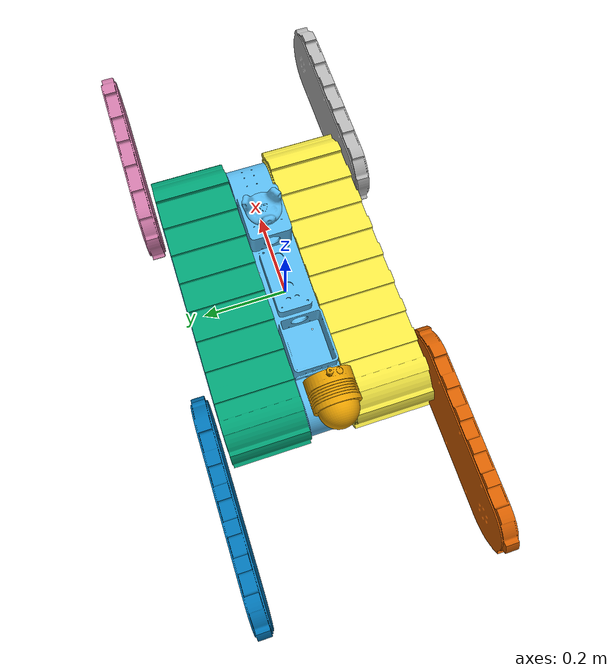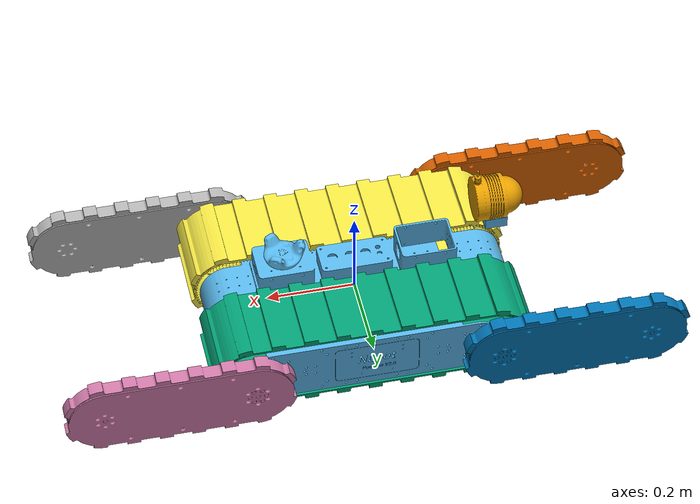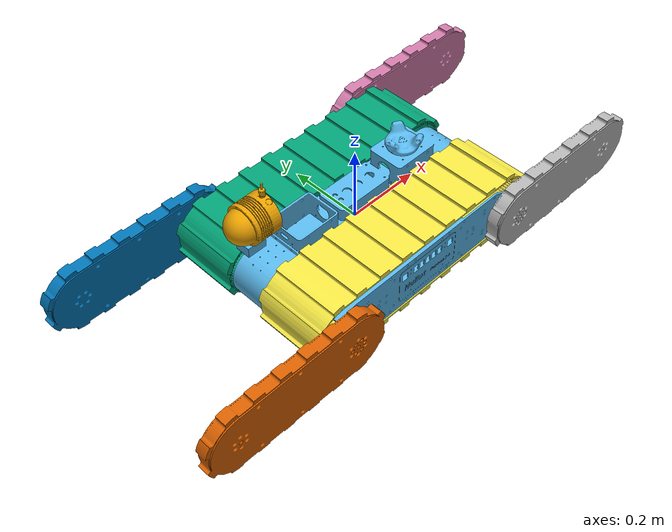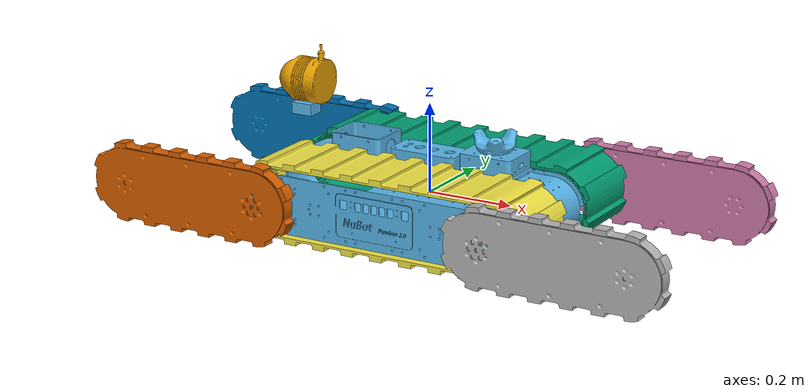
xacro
<?xml version='1.0'?>
<robot name="NuBot_Pumbaa_v2" xmlns:xacro="http://www.ros.org/wiki/xacro">

  <xacro:property name="PI" value="3.1415926535897931"/>

  <xacro:property name="base_mass" value="15" />
  <xacro:property name="track_mass" value="10" />
  <xacro:property name="flipper_mass" value="2.5" />

  <xacro:property name="track_radius" value="0.091" />
  <xacro:property name="track_width" value="0.18" />
  <xacro:property name="track_length" value="0.552" />
  <xacro:property name="track_distance" value="0.145" />

  <xacro:property name="flipper_radius" value="0.09" />
  <xacro:property name="flipper_width" value="0.038" />
  <xacro:property name="flipper_length" value="0.336" />
  <xacro:property name="flipper_distance" value="0.266" />
  <xacro:property name="flipper_visual_bias" value="0.016" />

  <link name="base_link"></link>
  <joint name="base_link_joint" type="fixed">
    <origin xyz="0 0 0" rpy="0 0 0" />
    <parent link="base_link"/>
    <child link="chassis_link" />
  </joint>
  <!--chassis_link-->
  <link name='chassis_link'>
    <inertial>
      <origin xyz="0 0 0" rpy="0 0 0" />
      <mass value="${base_mass}" />
      <inertia ixx="0.203664" ixy="0" ixz="0"
                iyy="0.136197" iyz="0"
                izz="0.319921" />
    </inertial>

    <collision name='base_collision_1'>
      <origin xyz="${track_length/2} 0 0" rpy="${PI/2} 0 0" />
      <geometry>
        <cylinder radius="0.07" length="0.10"/>
      </geometry>
    </collision>
    <collision name='base_collision_2'>
      <origin xyz="${-1*track_length/2} 0 0" rpy="${PI/2} 0 0" />
      <geometry>
        <cylinder radius="0.07" length="0.10"/>
      </geometry>
    </collision>
    <collision name='base_collision'>
      <origin xyz="0 0 0" rpy="0 0 0" />
      <geometry>
        <box size="${track_length} 0.10 0.14" />
      </geometry>
    </collision>
    <visual name='base_visual'>
      <origin xyz="0 0 0" rpy="0 0 0" />
      <geometry>
        <mesh filename="model://NuBot_Pumbaa_v2/meshes/base_link.STL" />
      </geometry>
    </visual>
    <visual name='base_vive_link_visual'>
      <origin xyz="0.16175 0 0.138" rpy="0 0 0" />
      <geometry>
        <mesh filename="model://NuBot_Pumbaa_v2/meshes/vive_link.STL" />
      </geometry>
    </visual>
  </link>

  <gazebo reference="chassis_link">
    <selfCollide>false</selfCollide>
    <mu1>1</mu1>
    <mu2>1</mu2>
    <kp value="10000000.0" />
    <kd value="1.0" />
    <fdir1 value="0 1 0" />
    <gravity>1</gravity>
    <maxContacts>2</maxContacts>
  </gazebo>

  <!--left_track-->
  <link name='left_track_link'>
    <inertial>
      <origin xyz="0 0 0" rpy="0 0 0" />
      <mass value="${track_mass}" />
      <inertia ixx="0.15" ixy="0" ixz="0"
                iyy="0.9" iyz="0"
                izz="0.9" />
    </inertial>

    <visual name='left_track_visual'>
      <origin xyz="0 ${-1*track_distance} 0" rpy="0 0 0" />
      <geometry>
        <mesh filename="model://NuBot_Pumbaa_v2/meshes/left_track_link.STL" />
      </geometry>
    </visual>

    <collision name='left_track_collision_1'>
      <origin xyz="${track_length/2} 0 0" rpy="${PI/2} 0 0" />
      <geometry>
        <cylinder radius="${track_radius}" length="${track_width}"/>
      </geometry>
    </collision>
    <collision name='left_track_collision_2'>
      <origin xyz="${-1*track_length/2} 0 0" rpy="${PI/2} 0 0" />
      <geometry>
        <cylinder radius="${track_radius}" length="${track_width}"/>
      </geometry>
    </collision>
    <collision name='left_track_collision'>
      <origin xyz="0 0 0" rpy="0 0 0" />
      <geometry>
        <box size="${track_length} ${track_width} ${track_radius*2}" />
      </geometry>
    </collision>
  </link>

  <gazebo reference="left_track_link">
    <selfCollide>false</selfCollide>
    <mu1>10</mu1>
    <mu2>10</mu2>
    <kp value="10000000.0" />
    <kd value="1.0" />
    <fdir1 value="0 1 0" />
    <gravity>1</gravity>
    <maxContacts>2</maxContacts>
  </gazebo>

  <!--left_track joints-->
  <joint name='left_track_joint' type='revolute'><!-- fixed -->
    <origin xyz="0 ${track_distance} 0" rpy="0 0 0" />
    <child link="left_track_link" />
    <parent link="chassis_link" />
    <limit lower="-1e-16" upper="1e-16" effort="10000" velocity="10000"/>
    <axis xyz="0 0 0"/>
    <dynamics damping="10000" friction="10000"/>
  </joint>

  <!--right_track-->
  <link name='right_track_link'>
    <inertial>
      <origin xyz="0 0 0" rpy="0 0 0" />
      <mass value="${track_mass}" />
      <inertia ixx="0.15" ixy="0" ixz="0"
                iyy="0.9" iyz="0"
                izz="0.9" />
    </inertial>

    <visual name='right_track_visual'>
      <origin xyz="0 ${track_distance} 0" rpy="0 0 0" />
      <geometry>
        <mesh filename="model://NuBot_Pumbaa_v2/meshes/right_track_link.STL" />
      </geometry>
    </visual>

    <collision name='right_track_collision_1'>
      <origin xyz="${track_length/2} 0 0" rpy="${PI/2} 0 0" />
      <geometry>
        <cylinder radius="${track_radius}" length="${track_width}"/>
      </geometry>
    </collision>
    <collision name='right_track_collision_2'>
      <origin xyz="${-1*track_length/2} 0 0" rpy="${PI/2} 0 0" />
      <geometry>
        <cylinder radius="${track_radius}" length="${track_width}"/>
      </geometry>
    </collision>
    <collision name='right_track_collision'>
      <origin xyz="0 0 0" rpy="0 0 0" />
      <geometry>
        <box size="${track_length} ${track_width} ${track_radius*2}" />
      </geometry>
    </collision>
  </link>

  <gazebo reference="right_track_link">
    <selfCollide>false</selfCollide>
    <mu1>10</mu1>
    <mu2>10</mu2>
    <kp value="10000000.0" />
    <kd value="1.0" />
    <fdir1 value="0 1 0" />
    <gravity>1</gravity>
    <maxContacts>2</maxContacts>
  </gazebo>

  <!--right_track joints-->
  <joint name='right_track_joint' type='revolute'><!-- fixed -->
    <origin xyz="0 ${-1*track_distance} 0" rpy="0 0 0" />
    <parent link="chassis_link" />
    <child link="right_track_link" />
    <limit lower="-1e-16" upper="1e-16" effort="10000" velocity="10000"/>
    <axis xyz="0 0 0"/>
    <dynamics damping="10000" friction="10000"/>
  </joint>

  <!--rear_left_flipper-->
  <link name='rear_left_flipper_link'>
    <inertial>
      <origin xyz="${-1*flipper_length/2} 0 0" rpy="0 0 0" />
      <mass value="${flipper_mass}" />
      <inertia ixx="0.0025" ixy="0" ixz="0"
                iyy="0.022" iyz="0"
                izz="0.02" />
    </inertial>

    <visual name='rear_left_flipper_visual'>
      <origin xyz="0 ${-1*flipper_visual_bias} 0" rpy="0 0 0" />
      <geometry>
        <mesh filename="model://NuBot_Pumbaa_v2/meshes/back_left_fin_link.STL" />
      </geometry>
    </visual>

    <collision name='rear_left_flipper_collision_large_wheel_collision'>
      <origin xyz="0 0 0" rpy="${PI/2} 0 0" />
      <geometry>
        <cylinder radius="${flipper_radius}" length="${flipper_width}"/>
      </geometry>
    </collision>
    <collision name='rear_left_flipper_collision_small_wheel_collision'>
      <origin xyz="${-1*flipper_length} 0 0" rpy="${PI/2} 0 0" />
      <geometry>
        <cylinder radius="${flipper_radius}" length="${flipper_width}"/>
      </geometry>
    </collision>
    <collision name='rear_left_flipper_collision_middle_bar_collision'>
      <origin xyz="${-1*flipper_length/2} 0 0" rpy="0 0 0" />
      <geometry>
        <box size="${flipper_length} ${flipper_width} ${flipper_radius*2}" />
      </geometry>
    </collision>
  </link>

  <gazebo reference="rear_left_flipper_link">
    <selfCollide>false</selfCollide>
    <mu1>10</mu1>
    <mu2>10</mu2>
    <kp value="10000000.0" />
    <kd value="1.0" />
    <fdir1 value="0 1 0" />
    <gravity>1</gravity>
    <maxContacts>2</maxContacts>
  </gazebo>

  <joint name='rear_left_flipper_joint' type='revolute'>
    <origin xyz="${-1*track_length/2} ${flipper_distance} 0" rpy="0 0 0" />
    <child link="rear_left_flipper_link" />
    <parent link="chassis_link" />
    <axis xyz="0 1 0" />
    <limit lower="-3" upper="3" effort="-1" velocity="0.3" />
  </joint>

  <!--rear_right_flipper-->
  <link name='rear_right_flipper_link'>
    <inertial>
      <origin xyz="${-1*flipper_length/2} 0 0" rpy="0 0 0" />
      <mass value="${flipper_mass}" />
      <inertia ixx="0.0025" ixy="0" ixz="0"
                iyy="0.022" iyz="0"
                izz="0.02" />
    </inertial>

    <visual name='rear_right_flipper_visual'>
      <origin xyz="0 ${flipper_visual_bias} 0" rpy="0 0 0" />
      <geometry>
        <mesh filename="model://NuBot_Pumbaa_v2/meshes/back_right_fin_link.STL" />
      </geometry>
    </visual>

    <collision name='rear_right_flipper_collision_large_wheel_collision'>
      <origin xyz="0 0 0" rpy="${PI/2} 0 0" />
      <geometry>
        <cylinder radius="${flipper_radius}" length="${flipper_width}"/>
      </geometry>
    </collision>
    <collision name='rear_right_flipper_collision_small_wheel_collision'>
      <origin xyz="${-1*flipper_length} 0 0" rpy="${PI/2} 0 0" />
      <geometry>
        <cylinder radius="${flipper_radius}" length="${flipper_width}"/>
      </geometry>
    </collision>
    <collision name='rear_right_flipper_collision_middle_bar_collision'>
      <origin xyz="${-1*flipper_length/2} 0 0" rpy="0 0 ${PI}" />
      <geometry>
        <box size="${flipper_length} ${flipper_width} ${flipper_radius*2}" />
      </geometry>
    </collision>
  </link>

  <gazebo reference="rear_right_flipper_link">
    <selfCollide>false</selfCollide>
    <mu1>10</mu1>
    <mu2>10</mu2>
    <kp value="10000000.0" />
    <kd value="1.0" />
    <fdir1 value="0 1 0" />
    <gravity>1</gravity>
    <maxContacts>2</maxContacts>
  </gazebo>

  <joint name='rear_right_flipper_joint' type='revolute'>
    <origin xyz="${-1*track_length/2} ${-1*flipper_distance} 0" rpy="0 0 0" />
    <child link="rear_right_flipper_link" />
    <parent link="chassis_link" />
    <axis xyz="0 1 0" />
    <limit lower="-3" upper="3" effort="-1" velocity="0.3" />
  </joint>

  <!--front_left_flipper-->
  <link name='front_left_flipper_link'>
    <inertial>
      <origin xyz="${flipper_length/2} 0 0" rpy="0 0 0" />
      <mass value="${flipper_mass}" />
      <inertia ixx="0.0025" ixy="0" ixz="0"
                iyy="0.022" iyz="0"
                izz="0.02" />
    </inertial>

    <visual name='front_left_flipper_visual'>
      <origin xyz="0 ${-1*flipper_visual_bias} 0" rpy="0 0 0" />
      <geometry>
        <mesh filename="model://NuBot_Pumbaa_v2/meshes/front_left_fin_link.STL" />
      </geometry>
    </visual>

    <collision name='front_left_flipper_collision_large_wheel_collision'>
      <origin xyz="0 0 0" rpy="${PI/2} 0 0" />
      <geometry>
        <cylinder radius="${flipper_radius}" length="${flipper_width}"/>
      </geometry>
    </collision>
    <collision name='front_left_flipper_collision_small_wheel_collision'>
      <origin xyz="${flipper_length} 0 0" rpy="${PI/2} 0 0" />
      <geometry>
        <cylinder radius="${flipper_radius}" length="${flipper_width}"/>
      </geometry>
    </collision>
    <collision name='front_left_flipper_collision_middle_bar_collision'>
      <origin xyz="${flipper_length/2} 0 0" rpy="0 0 0" />
      <geometry>
        <box size="${flipper_length} ${flipper_width} ${flipper_radius*2}" />
      </geometry>
    </collision>
  </link>

  <gazebo reference="front_left_flipper_link">
    <selfCollide>false</selfCollide>
    <mu1>10</mu1>
    <mu2>10</mu2>
    <kp value="10000000.0" />
    <kd value="1.0" />
    <fdir1 value="0 1 0" />
    <gravity>1</gravity>
    <maxContacts>2</maxContacts>
  </gazebo>

  <joint name='front_left_flipper_joint' type='revolute'>
    <origin xyz="${track_length/2} ${flipper_distance} 0" rpy="0 0 0" />
    <child link="front_left_flipper_link" />
    <parent link="chassis_link" />
    <axis xyz="0 1 0" />
    <limit lower="-3" upper="3" effort="-1" velocity="0.3" />
  </joint>

  <!--front_right_flipper-->
  <link name='front_right_flipper_link'>
    <inertial>
      <origin xyz="${flipper_length/2} 0 0" rpy="0 0 0" />
      <mass value="${flipper_mass}" />
      <inertia ixx="0.0025" ixy="0" ixz="0"
                iyy="0.022" iyz="0"
                izz="0.02" />
    </inertial>

    <visual name='front_right_flipper_link_visual'>
      <origin xyz="0 ${flipper_visual_bias} 0" rpy="0 0 0" />
      <geometry>
        <mesh filename="model://NuBot_Pumbaa_v2/meshes/front_right_fin_link.STL" />
      </geometry>
    </visual>

    <collision name='front_right_flipper_collision_large_wheel_collision'>
      <origin xyz="0 0 0" rpy="${PI/2} 0 0" />
      <geometry>
        <cylinder radius="${flipper_radius}" length="${flipper_width}"/>
      </geometry>
    </collision>
    <collision name='front_right_flipper_collision_small_wheel_collision'>
      <origin xyz="${flipper_length} 0 0" rpy="${PI/2} 0 0" />
      <geometry>
        <cylinder radius="${flipper_radius}" length="${flipper_width}"/>
      </geometry>
    </collision>
    <collision name='front_right_flipper_collision_middle_bar_collision'>
      <origin xyz="${flipper_length/2} 0 0" rpy="0 0 ${PI}" />
      <geometry>
        <box size="${flipper_length} ${flipper_width} ${flipper_radius*2}" />
      </geometry>
    </collision>
  </link>

  <gazebo reference="front_right_flipper_link">
    <selfCollide>false</selfCollide>
    <mu1>10</mu1>
    <mu2>10</mu2>
    <kp value="10000000.0" />
    <kd value="1.0" />
    <fdir1 value="0 1 0" />
    <gravity>1</gravity>
    <maxContacts>2</maxContacts>
  </gazebo>

  <joint name='front_right_flipper_joint' type='revolute'>
    <origin xyz="${track_length/2} ${-1*flipper_distance} 0" rpy="0 0 0" />
    <child link="front_right_flipper_link" />
    <parent link="chassis_link" />
    <axis xyz="0 1 0" />
    <limit lower="-3" upper="3" effort="-1" velocity="0.3" />
  </joint>

  <gazebo>
    <plugin name='NuBot_Pumbaa_Gazebo_Plugin' filename='libnubot_pumbaa_plugin.so'>
      <!--The link tags of tracks-->
      <body>base_link</body>
      <left_track>left_track_link</left_track>
      <right_track>right_track_link</right_track>
      <left_flipper>front_left_flipper_link</left_flipper>
      <left_flipper>rear_left_flipper_link</left_flipper>
      <right_flipper>front_right_flipper_link</right_flipper>
      <right_flipper>rear_right_flipper_link</right_flipper>
      <!--The flippers joint tag-->
      <front_left_flipper_j>front_left_flipper_joint</front_left_flipper_j>
      <rear_left_flipper_j>rear_left_flipper_joint</rear_left_flipper_j>
      <front_right_flipper_j>front_right_flipper_joint</front_right_flipper_j>
      <rear_right_flipper_j>rear_right_flipper_joint</rear_right_flipper_j>
      <!--The Mu/Mu2 of tracks, which influnce the simulating performance-->
      <track_mu>2</track_mu>
      <track_mu2>0.8</track_mu2>
      <!--The PID parameter of flippers position controll & initial position 1.5708 -->
      <flip_p>1750</flip_p>
      <flip_i>800</flip_i>
      <flip_d>0</flip_d>
      <flip_initial>0</flip_initial>
      <!--The PID parameter of flippers velocity controll, not working-->
      <flip_vel_p>100</flip_vel_p>
      <flip_vel_i>100</flip_vel_i>
      <flip_vel_d>0</flip_vel_d>
      <!--The parameters of tracks-->
      <tracksSeparation>0.29</tracksSeparation>
      <steeringEfficiency>0.5</steeringEfficiency>
      <maxLinearSpeed>2.0</maxLinearSpeed>
      <maxAngularSpeed>1.5</maxAngularSpeed>
    </plugin>
  </gazebo>

  <!-- RS-Helios lidar includes -->
  <!-- IMU includes (RS-Helios) -->

  <!-- RS-Bpearl lidar includes -->
  <xacro:include filename="$(find gazebo_description)/models/RS_Bpearl/model_2.urdf.xacro"/>
  <xacro:RS_Bpearl parent="chassis_link" name="rs_bpearl" topic="/velodyne_points" hz="10" lasers="32" samples="1800" min_angle="-${PI}" max_angle="${PI}" min_range ="0.1" max_range="50.0" gpu="true">
    <origin xyz="-0.36277 0 0.2115" rpy="0 ${PI/2} ${PI}" />
  </xacro:RS_Bpearl>
  <!-- IMU includes (RS-Bpearl) -->
  <xacro:include filename="$(find gazebo_description)/models/IMU/model.urdf.xacro"/>
  <xacro:IMU parent="chassis_link" name="imu" topic="/imu/data" hz="400">
    <origin xyz="-0.3185 0 0.133" rpy="0 0 ${PI}" />
  </xacro:IMU>

  <!-- camera includes -->

</robot>

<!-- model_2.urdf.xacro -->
<robot xmlns:xacro="http://www.ros.org/wiki/xacro" name="RS_Bpearl">
  <xacro:property name="M_PI" value="3.1415926535897931" />
  <xacro:macro name="RS_Bpearl" params="*origin parent:=base_link name:=rs_bpearl topic:=/lidar_points organize_cloud:=false hz:=10 lasers:=32 samples:=2187 collision_range:=0.1 min_range:=0.1 max_range:=100.0 noise:=0.008 min_angle:=-${M_PI} max_angle:=${M_PI} gpu:=false">

    <joint name="${name}_mount_joint" type="fixed">
      <xacro:insert_block name="origin" />
      <parent link="${parent}"/>
      <child link="${name}"/>
    </joint>

    <link name='${name}'>
      <collision name='collision'>
        <origin xyz="0 0 -0.04" rpy="0 0 0"/>
        <geometry>
          <cylinder radius="0.05" length="0.11"/>
        </geometry>
        <max_contacts>10</max_contacts>
      </collision>
      <visual name='visual'>
        <origin xyz="0 0 0" rpy="0 0 0"/>
        <geometry>
          <mesh filename="model://RS_Bpearl/meshes/RS_Bpearl_frame.STL" />
        </geometry>
      </visual>
    </link>

    <!-- Gazebo requires the velodyne_gazebo_plugins package -->
    <gazebo reference="${name}">
      <xacro:if value="${gpu}">
        <sensor type="gpu_ray" name="${name}-RS_Bpearl">
          <pose>0 0 0 0 0 0</pose>
          <visualize>false</visualize>
          <update_rate>${hz}</update_rate>
          <ray>
            <scan>
              <horizontal>
                <samples>${samples}</samples>
                <resolution>1</resolution>
                <min_angle>${min_angle}</min_angle>
                <max_angle>${max_angle}</max_angle>
              </horizontal>
              <vertical>
                <samples>${lasers}</samples>
                <resolution>1</resolution>
                <min_angle>${2.3125*M_PI/180.0}</min_angle>
                <max_angle>${84.9*M_PI/180.0}</max_angle>
              </vertical>
            </scan>
            <range>
              <min>${collision_range}</min>
              <max>${max_range+1}</max>
              <resolution>0.001</resolution>
            </range>
            <noise>
              <type>gaussian</type>
              <mean>0.0</mean>
              <stddev>${noise}</stddev>
            </noise>
          </ray>
          <plugin name="gazebo_ros_laser_controller" filename="libgazebo_ros_velodyne_gpu_laser.so">
            <topicName>${topic}</topicName>
            <frameName>${name}</frameName>
            <organize_cloud>${organize_cloud}</organize_cloud>
            <min_range>${min_range}</min_range>
            <max_range>${max_range}</max_range>
            <gaussianNoise>${noise}</gaussianNoise>
          </plugin>
        </sensor>
      </xacro:if>
      <xacro:unless value="${gpu}">
        <sensor type="ray" name="${name}-RS_Bpearl">
          <pose>0 0 0 0 0 0</pose>
          <visualize>false</visualize>
          <update_rate>${hz}</update_rate>
          <ray>
            <scan>
              <horizontal>
                <samples>${samples}</samples>
                <resolution>1</resolution>
                <min_angle>${min_angle}</min_angle>
                <max_angle>${max_angle}</max_angle>
              </horizontal>
              <vertical>
                <samples>${lasers}</samples>
                <resolution>1</resolution>
                <min_angle>${2.3125*M_PI/180.0}</min_angle>
                <max_angle>${89.5*M_PI/180.0}</max_angle>
              </vertical>
            </scan>
            <range>
              <min>${collision_range}</min>
              <max>${max_range+1}</max>
              <resolution>0.001</resolution>
            </range>
            <noise>
              <type>gaussian</type>
              <mean>0.0</mean>
              <stddev>${noise}</stddev>
            </noise>
          </ray>
          <plugin name="gazebo_ros_laser_controller" filename="libgazebo_ros_velodyne_laser.so">
            <topicName>${topic}</topicName>
            <frameName>${name}</frameName>
            <organize_cloud>${organize_cloud}</organize_cloud>
            <min_range>${min_range}</min_range>
            <max_range>${max_range}</max_range>
            <gaussianNoise>${noise}</gaussianNoise>
          </plugin>
        </sensor>
      </xacro:unless>
    </gazebo>

  </xacro:macro>
</robot>

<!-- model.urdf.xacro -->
<robot xmlns:xacro="http://www.ros.org/wiki/xacro" name="IMU">
    <xacro:property name="M_PI" value="3.1415926535897931" />
    <xacro:macro name="IMU" params="*origin parent:=base_link name:=imu topic:=/imu/data hz:=400">

        <joint name="${name}_mount_joint" type="fixed">
            <xacro:insert_block name="origin" />
            <parent link="${parent}"/>
            <child link="${name}" />
        </joint>

        <link name="${name}">
            <visual name="visual">
                <origin xyz="0 0 0.013" rpy="0 0 0"/>
                <geometry>
                    <box size="0.05 0.04 0.026" />
                </geometry>
            </visual>
            <collision name="collision">
            <origin xyz="0 0 0.013" rpy="0 0 0"/>
            <geometry>
                <box size="0.05 0.04 0.026" />
            </geometry>
            </collision>
        </link>

        <gazebo>
            <plugin name="imu_controller" filename="libhector_gazebo_ros_imu.so">
                <robotNamespace>/</robotNamespace>
                <updateRate>${hz}</updateRate>
                <bodyName>${name}</bodyName>
                <topicName>${topic}</topicName>
                <accelDrift>0.005 0.005 0.005</accelDrift>
                <accelGaussianNoise>0.005 0.005 0.005</accelGaussianNoise>
                <rateDrift>0.005 0.005 0.005 </rateDrift>
                <rateGaussianNoise>0.005 0.005 0.005 </rateGaussianNoise>
                <headingDrift>0.005</headingDrift>
                <headingGaussianNoise>0.005</headingGaussianNoise>
            </plugin>
        </gazebo>
    </xacro:macro>
</robot>
